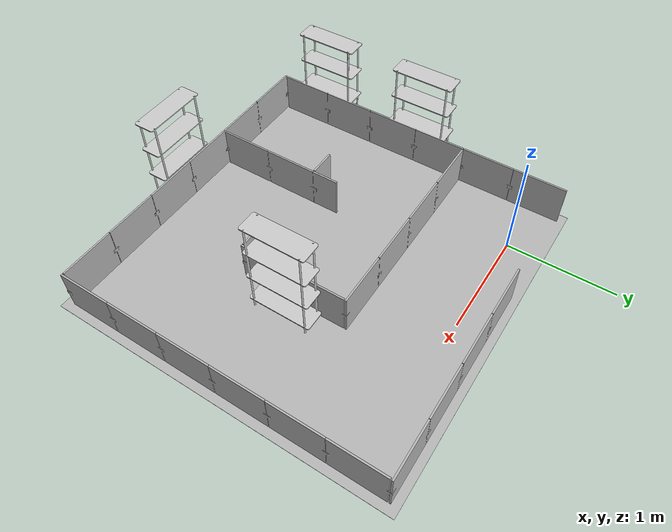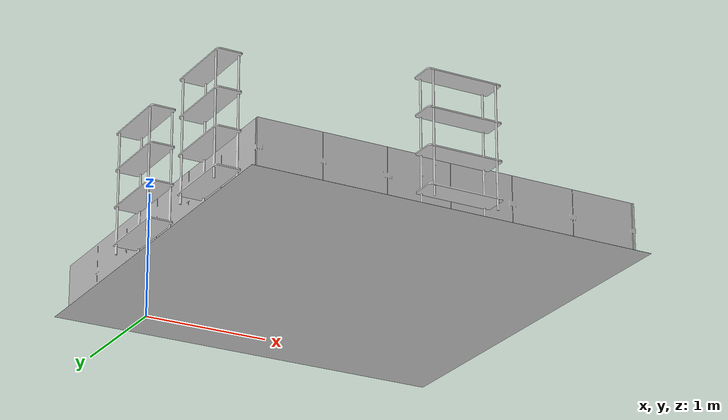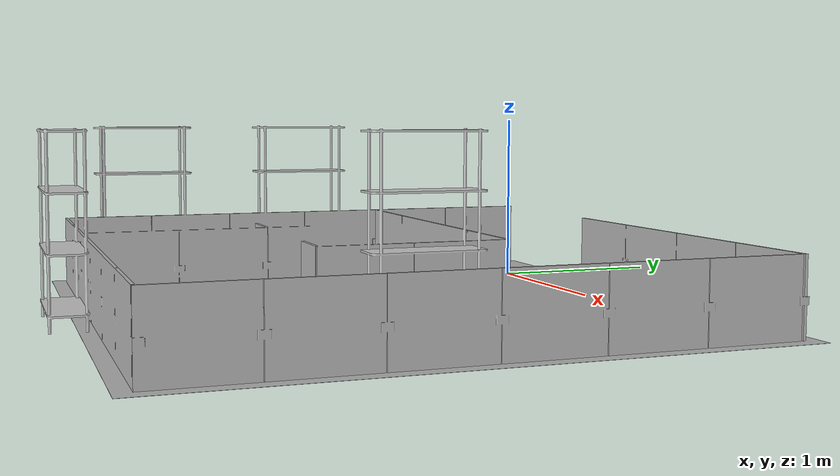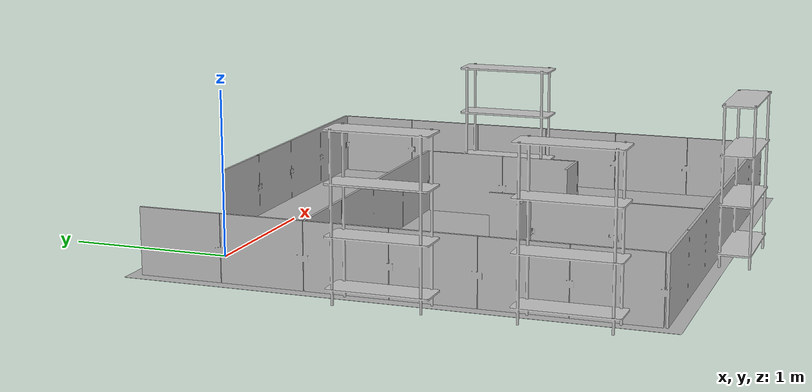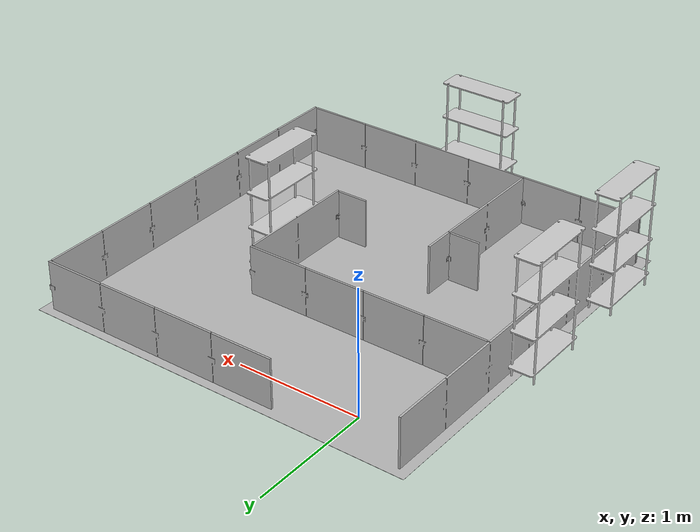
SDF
<?xml version='1.0'?>
<sdf version='1.7'>
  <model name='service_group'>
    <model name='service_group_map'>
      <link name='link_1'>
        <inertial>
          <mass>1</mass>
          <inertia>
            <ixx>0.166667</ixx>
            <ixy>0</ixy>
            <ixz>0</ixz>
            <iyy>0.166667</iyy>
            <iyz>0</iyz>
            <izz>0.166667</izz>
          </inertia>
        </inertial>
        <pose>0 0 0 0 -0 0</pose>
        <visual name='visual'>
          <pose>0 0 0 0 -0 0</pose>
          <geometry>
            <mesh>
              <uri>model://rei_2026raicom/service_group_map/meshes/service_floor.dae</uri>
              <scale>1 1 1</scale>
            </mesh>
          </geometry>
          <transparency>0</transparency>
          <cast_shadows>1</cast_shadows>
        </visual>
        <collision name='collision'>
          <laser_retro>0</laser_retro>
          <max_contacts>10</max_contacts>
          <pose>0 0 0 0 -0 0</pose>
          <geometry>
            <mesh>
              <uri>model://rei_2026raicom/service_group_map/meshes/service_floor.dae</uri>
              <scale>1 1 1</scale>
            </mesh>
          </geometry>
          <surface>
            <friction>
              <ode>
                <mu>1</mu>
                <mu2>1</mu2>
                <fdir1>0 0 0</fdir1>
                <slip1>0</slip1>
                <slip2>0</slip2>
              </ode>
              <torsional>
                <coefficient>1</coefficient>
                <patch_radius>0</patch_radius>
                <surface_radius>0</surface_radius>
                <use_patch_radius>1</use_patch_radius>
                <ode>
                  <slip>0</slip>
                </ode>
              </torsional>
            </friction>
            <bounce>
              <restitution_coefficient>0</restitution_coefficient>
              <threshold>1e+06</threshold>
            </bounce>
            <contact>
              <collide_without_contact>0</collide_without_contact>
              <collide_without_contact_bitmask>1</collide_without_contact_bitmask>
              <collide_bitmask>1</collide_bitmask>
              <ode>
                <soft_cfm>0</soft_cfm>
                <soft_erp>0.2</soft_erp>
                <kp>1e+13</kp>
                <kd>1</kd>
                <max_vel>0.01</max_vel>
                <min_depth>0</min_depth>
              </ode>
              <bullet>
                <split_impulse>1</split_impulse>
                <split_impulse_penetration_threshold>-0.01</split_impulse_penetration_threshold>
                <soft_cfm>0</soft_cfm>
                <soft_erp>0.2</soft_erp>
                <kp>1e+13</kp>
                <kd>1</kd>
              </bullet>
            </contact>
          </surface>
        </collision>
      </link>
      <static>1</static>
      <allow_auto_disable>1</allow_auto_disable>
      <pose>-0 0 0 0 -0 0</pose>
    </model>
    <model name='service_group_wall'>
      <link name='link_1'>
        <inertial>
          <mass>1</mass>
          <inertia>
            <ixx>0.166667</ixx>
            <ixy>0</ixy>
            <ixz>0</ixz>
            <iyy>0.166667</iyy>
            <iyz>0</iyz>
            <izz>0.166667</izz>
          </inertia>
        </inertial>
        <pose>0 0 0 0 -0 0</pose>
        <visual name='visual'>
          <pose>0 0 0 0 -0 0</pose>
          <geometry>
            <mesh>
              <uri>model://rei_2026raicom/service_group_wall/meshes/service_group_map.dae</uri>
              <scale>1 1 1</scale>
            </mesh>
          </geometry>
          <transparency>0</transparency>
          <cast_shadows>1</cast_shadows>
        </visual>
        <collision name='collision'>
          <laser_retro>0</laser_retro>
          <max_contacts>10</max_contacts>
          <pose>0 0 0 0 -0 0</pose>
          <geometry>
            <mesh>
              <uri>model://rei_2026raicom/service_group_wall/meshes/service_group_map.dae</uri>
              <scale>1 1 1</scale>
            </mesh>
          </geometry>
          <surface>
            <friction>
              <ode>
                <mu>1</mu>
                <mu2>1</mu2>
                <fdir1>0 0 0</fdir1>
                <slip1>0</slip1>
                <slip2>0</slip2>
              </ode>
              <torsional>
                <coefficient>1</coefficient>
                <patch_radius>0</patch_radius>
                <surface_radius>0</surface_radius>
                <use_patch_radius>1</use_patch_radius>
                <ode>
                  <slip>0</slip>
                </ode>
              </torsional>
            </friction>
            <bounce>
              <restitution_coefficient>0</restitution_coefficient>
              <threshold>1e+06</threshold>
            </bounce>
            <contact>
              <collide_without_contact>0</collide_without_contact>
              <collide_without_contact_bitmask>1</collide_without_contact_bitmask>
              <collide_bitmask>1</collide_bitmask>
              <ode>
                <soft_cfm>0</soft_cfm>
                <soft_erp>0.2</soft_erp>
                <kp>1e+13</kp>
                <kd>1</kd>
                <max_vel>0.01</max_vel>
                <min_depth>0</min_depth>
              </ode>
              <bullet>
                <split_impulse>1</split_impulse>
                <split_impulse_penetration_threshold>-0.01</split_impulse_penetration_threshold>
                <soft_cfm>0</soft_cfm>
                <soft_erp>0.2</soft_erp>
                <kp>1e+13</kp>
                <kd>1</kd>
              </bullet>
            </contact>
          </surface>
        </collision>
      </link>
      <static>1</static>
      <allow_auto_disable>1</allow_auto_disable>
      <pose>-0 0 0 0 -0 0</pose>
    </model>
    <static>0</static>
    <allow_auto_disable>1</allow_auto_disable>
  </model>
</sdf>
